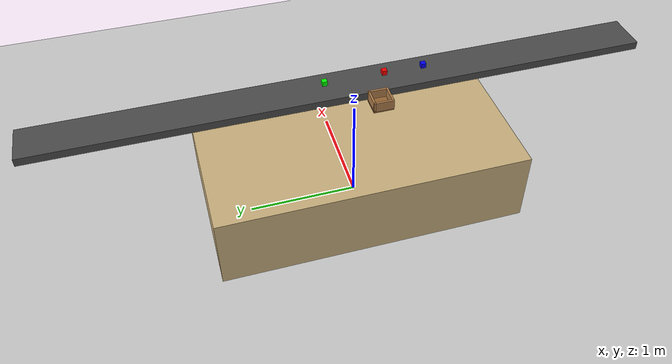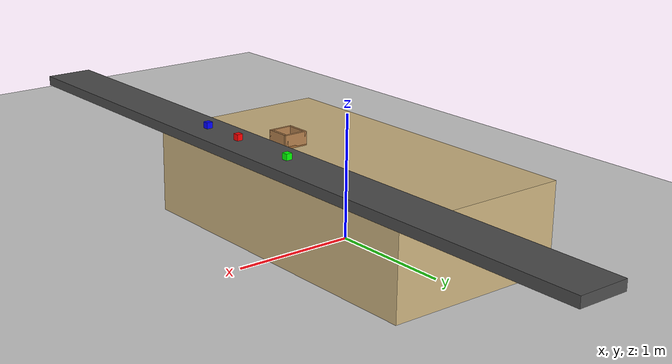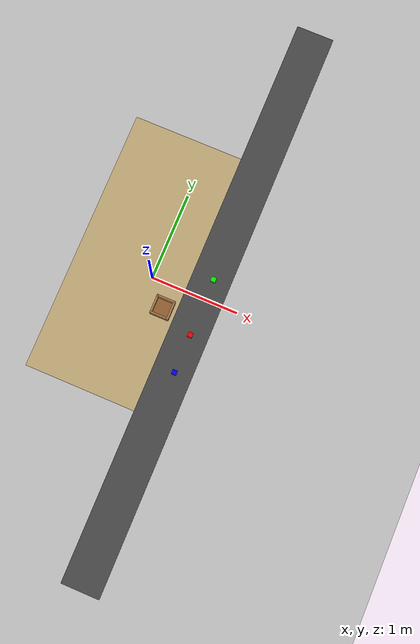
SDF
<sdf version="1.9">
 <world name="panda_grasp_world">
  <physics name="1ms" type="ode">
   <max_step_size>0.001</max_step_size>
   <real_time_factor>1.0</real_time_factor>
  </physics>
  <plugin filename="gz-sim-physics-system" name="gz::sim::systems::Physics"/>
  <plugin filename="gz-sim-user-commands-system" name="gz::sim::systems::UserCommands"/>
  <plugin filename="gz-sim-scene-broadcaster-system" name="gz::sim::systems::SceneBroadcaster"/>
  <plugin filename="gz-sim-contact-system" name="gz::sim::systems::Contact"/>
  <plugin filename="gz-sim-sensors-system" name="gz::sim::systems::Sensors"/>
  <light type="directional" name="sun">
   <pose>0 0 10 0 0 0</pose>
   <diffuse>0.8 0.8 0.8 1</diffuse>
   <specular>0.2 0.2 0.2 1</specular>
   <direction>-0.5 0.1 -0.9</direction>
  </light>
  <model name="ground_plane">
   <static>true</static>
   <link name="link">
    <collision name="collision"><geometry><plane><normal>0 0 1</normal></plane></geometry></collision>
    <visual name="visual">
     <geometry><plane><normal>0 0 1</normal><size>100 100</size></plane></geometry>
     <material><ambient>0.8 0.8 0.8 1</ambient><diffuse>0.8 0.8 0.8 1</diffuse></material>
    </visual>
   </link>
  </model>
  <model name="table">
   <static>false</static>
   <pose>0 0 0.35 0 0 0</pose>
   <link name="link">
    <collision name="collision"><geometry><box><size>1.5 2.8 0.7</size></box></geometry></collision>
    <visual name="visual">
     <geometry><box><size>1.5 2.8 0.7</size></box></geometry>
     <material><ambient>0.8 0.7 0.5 1</ambient><diffuse>0.8 0.7 0.5 1</diffuse></material>
    </visual>
   </link>
  </model>
  <model name="collection_box">
   <static>false</static>
   <pose>0.29 -0.35 0.74 0 0 0</pose>
   <link name="link">
    <collision name="bottom_collision"><geometry><box><size>0.20 0.20 0.02</size></box></geometry></collision>
    <visual name="bottom_visual">
     <geometry><box><size>0.20 0.20 0.02</size></box></geometry>
     <material><ambient>0.6 0.4 0.2 1</ambient><diffuse>0.6 0.4 0.2 1</diffuse></material>
    </visual>
    <collision name="wall1_collision">
     <pose>0.09 0 0.05 0 0 0</pose>
     <geometry><box><size>0.02 0.20 0.10</size></box></geometry>
    </collision>
    <visual name="wall1_visual">
     <pose>0.09 0 0.05 0 0 0</pose>
     <geometry><box><size>0.02 0.20 0.10</size></box></geometry>
     <material><ambient>0.7 0.5 0.3 1</ambient><diffuse>0.7 0.5 0.3 1</diffuse></material>
    </visual>
    <collision name="wall2_collision">
     <pose>-0.09 0 0.05 0 0 0</pose>
     <geometry><box><size>0.02 0.20 0.10</size></box></geometry>
    </collision>
    <visual name="wall2_visual">
     <pose>-0.09 0 0.05 0 0 0</pose>
     <geometry><box><size>0.02 0.20 0.10</size></box></geometry>
     <material><ambient>0.7 0.5 0.3 1</ambient><diffuse>0.7 0.5 0.3 1</diffuse></material>
    </visual>
    <collision name="wall3_collision">
     <pose>0 0.09 0.05 0 0 0</pose>
     <geometry><box><size>0.20 0.02 0.10</size></box></geometry>
    </collision>
    <visual name="wall3_visual">
     <pose>0 0.09 0.05 0 0 0</pose>
     <geometry><box><size>0.20 0.02 0.10</size></box></geometry>
     <material><ambient>0.7 0.5 0.3 1</ambient><diffuse>0.7 0.5 0.3 1</diffuse></material>
    </visual>
    <collision name="wall4_collision">
     <pose>0 -0.09 0.05 0 0 0</pose>
     <geometry><box><size>0.20 0.02 0.10</size></box></geometry>
    </collision>
    <visual name="wall4_visual">
     <pose>0 -0.09 0.05 0 0 0</pose>
     <geometry><box><size>0.20 0.02 0.10</size></box></geometry>
     <material><ambient>0.7 0.5 0.3 1</ambient><diffuse>0.7 0.5 0.3 1</diffuse></material>
    </visual>
   </link>
  </model>
  <model name="conveyor_1">
   <static>true</static>
   <pose>0.63 -0.11 0.74 0 0 1.5708</pose>
   <link name="link">
    <collision name="collision">
     <geometry><box><size>6.1 0.4 0.08</size></box></geometry>
     <surface>
      <friction><ode><mu>100.0</mu><mu2>100.0</mu2></ode></friction>
      <contact><ode><kp>1000000</kp><kd>1000</kd></ode></contact>
     </surface>
    </collision>
    <visual name="visual">
     <geometry><box><size>6.1 0.4 0.08</size></box></geometry>
     <material><ambient>0.3 0.3 0.3 1</ambient><diffuse>0.3 0.3 0.3 1</diffuse></material>
    </visual>
    <inertial><mass>10.0</mass><inertia><ixx>1.0</ixx><iyy>1.0</iyy><izz>1.0</izz></inertia></inertial>
   </link>
   <plugin filename="gz-sim-track-controller-system" name="gz::sim::systems::TrackController">
    <link>link</link>
    <velocity_topic>/conveyor_1/cmd_vel</velocity_topic>
    <track_orientation>0 0 0</track_orientation>
   </plugin>
  </model>
  <model name="green_cube">
   <pose>0.65 0.1 0.82 0 0 0</pose>
   <link name="link">
    <inertial>
     <mass>0.1</mass>
     <inertia><ixx>0.000167</ixx><iyy>0.000167</iyy><izz>0.000167</izz></inertia>
    </inertial>
    <collision name="collision">
     <geometry><box><size>0.05 0.05 0.05</size></box></geometry>
     <surface>
      <friction><ode><mu>50.0</mu><mu2>50.0</mu2></ode></friction>
      <contact><ode><kp>100000</kp><kd>100</kd></ode></contact>
     </surface>
    </collision>
    <visual name="visual">
     <geometry><box><size>0.05 0.05 0.05</size></box></geometry>
     <material><ambient>0 1 0 1</ambient><diffuse>0 1 0 1</diffuse></material>
    </visual>
   </link>
  </model>
  <model name="red_cube">
   <pose>0.65 -0.5 0.82 0 0 0</pose>
   <link name="link">
    <inertial>
     <mass>0.1</mass>
     <inertia><ixx>0.000167</ixx><iyy>0.000167</iyy><izz>0.000167</izz></inertia>
    </inertial>
    <collision name="collision">
     <geometry><box><size>0.05 0.05 0.05</size></box></geometry>
     <surface>
      <friction><ode><mu>50.0</mu><mu2>50.0</mu2></ode></friction>
      <contact><ode><kp>100000</kp><kd>100</kd></ode></contact>
     </surface>
    </collision>
    <visual name="visual">
     <geometry><box><size>0.05 0.05 0.05</size></box></geometry>
     <material><ambient>1 0 0 1</ambient><diffuse>1 0 0 1</diffuse></material>
    </visual>
   </link>
  </model>
  <model name="blue_cube">
   <pose>0.65 -0.9 0.82 0 0 0</pose>
   <link name="link">
    <inertial>
     <mass>0.1</mass>
     <inertia><ixx>0.000167</ixx><iyy>0.000167</iyy><izz>0.000167</izz></inertia>
    </inertial>
    <collision name="collision">
     <geometry><box><size>0.05 0.05 0.05</size></box></geometry>
     <surface>
      <friction><ode><mu>50.0</mu><mu2>50.0</mu2></ode></friction>
      <contact><ode><kp>100000</kp><kd>100</kd></ode></contact>
     </surface>
    </collision>
    <visual name="visual">
     <geometry><box><size>0.05 0.05 0.05</size></box></geometry>
     <material><ambient>0 0 1 1</ambient><diffuse>0 0 1 1</diffuse></material>
    </visual>
   </link>
  </model>
  <model name="overhead_rgbd_camera">
   <static>true</static>
   <pose>0.63 -0.8 1.50 0 1.5708 0</pose>
   <link name="link">
    <sensor name="rgbd_camera" type="rgbd_camera">
     <camera>
      <horizontal_fov>1.047</horizontal_fov>
      <image><width>640</width><height>480</height></image>
      <clip><near>0.1</near><far>10.0</far></clip>
      <optical_frame_id>camera_link_optical</optical_frame_id>
     </camera>
     <always_on>true</always_on>
     <update_rate>30</update_rate>
     <visualize>true</visualize>
     <topic>camera</topic>
     <gz_frame_id>camera_link</gz_frame_id>
    </sensor>
   </link>
  </model>
 </world>
</sdf>
